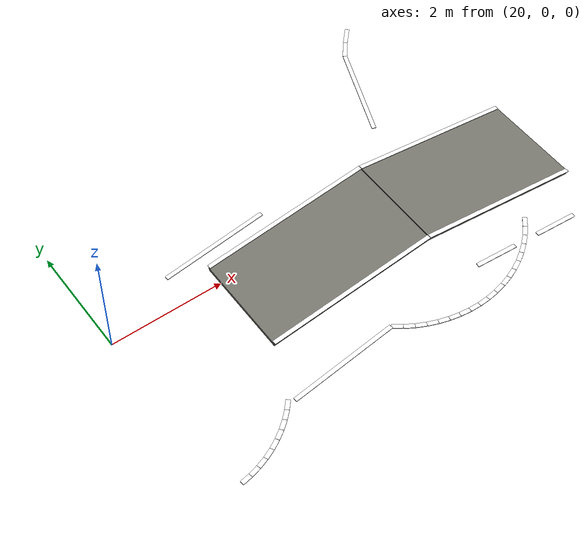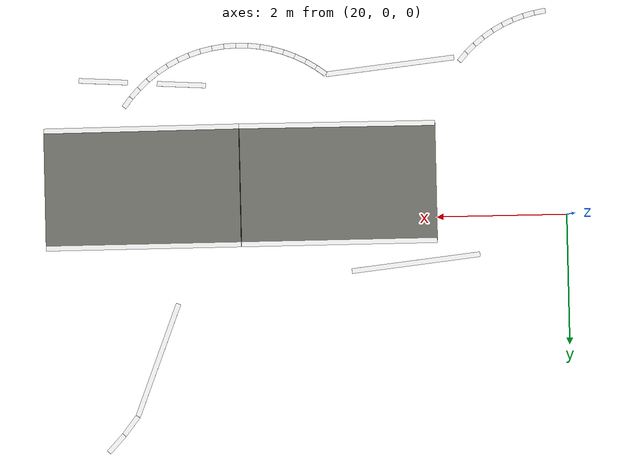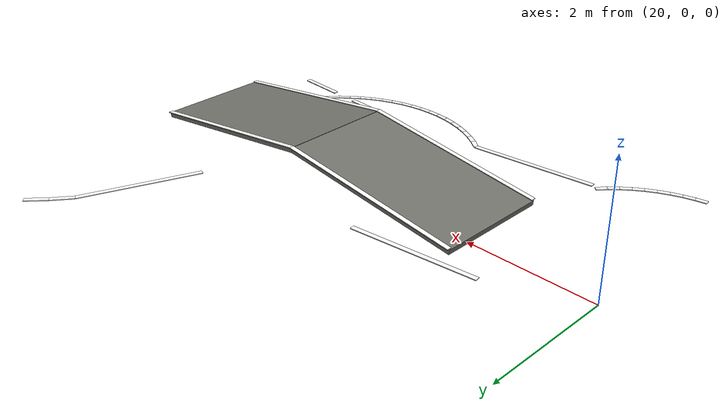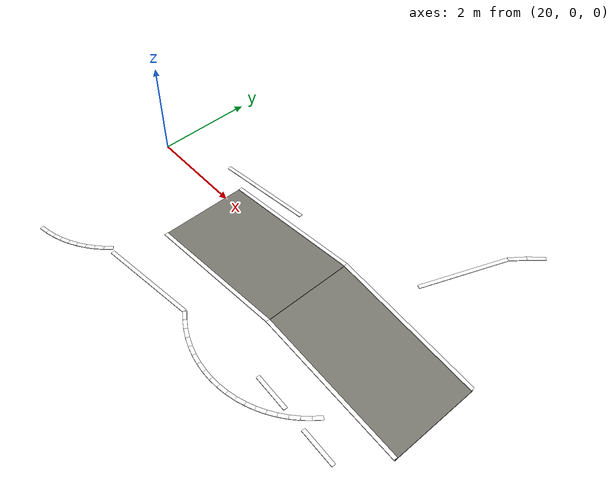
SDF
<sdf version="1.9">
 <world name="igvc_competition">
  <model name="left_boundary_4">
   <static>1</static>
   <pose>22.3334 0.6899 0.011 0 0 0.109560</pose>
   <link name="link">
    <visual name="visual">
     <geometry><box><size>1.9822 0.0762 0.012</size></box></geometry>
     <material>
      <ambient>0.98 0.98 0.98 1</ambient>
      <diffuse>0.98 0.98 0.98 1</diffuse>
      <specular>0.05 0.05 0.05 1</specular>
      <emissive>0.9 0.9 0.9 1</emissive>
     </material>
    </visual>
   </link>
  </model>
  <model name="right_boundary_4">
   <static>1</static>
   <pose>22.6666 -2.3399 0.011 0 0 0.109560</pose>
   <link name="link">
    <visual name="visual">
     <geometry><box><size>1.9822 0.0762 0.012</size></box></geometry>
     <material>
      <ambient>0.98 0.98 0.98 1</ambient>
      <diffuse>0.98 0.98 0.98 1</diffuse>
      <specular>0.05 0.05 0.05 1</specular>
      <emissive>0.9 0.9 0.9 1</emissive>
     </material>
    </visual>
   </link>
  </model>
  <model name="left_boundary_5">
   <static>1</static>
   <pose>26.3209 2.0995 0.011 0 0 1.204284</pose>
   <link name="link">
    <visual name="visual">
     <geometry><box><size>1.8372 0.0762 0.012</size></box></geometry>
     <material>
      <ambient>0.98 0.98 0.98 1</ambient>
      <diffuse>0.98 0.98 0.98 1</diffuse>
      <specular>0.05 0.05 0.05 1</specular>
      <emissive>0.9 0.9 0.9 1</emissive>
     </material>
    </visual>
   </link>
  </model>
  <model name="right_boundary_join_4_13">
   <static>1</static>
   <pose>20.3489 -3.1204 0.011 0 0 0.171007</pose>
   <link name="link">
    <visual name="visual">
     <geometry><box><size>0.1747 0.0762 0.012</size></box></geometry>
     <material>
      <ambient>0.98 0.98 0.98 1</ambient>
      <diffuse>0.98 0.98 0.98 1</diffuse>
      <specular>0.05 0.05 0.05 1</specular>
      <emissive>0.9 0.9 0.9 1</emissive>
     </material>
    </visual>
   </link>
  </model>
  <model name="right_boundary_join_4_14">
   <static>1</static>
   <pose>20.5195 -3.0834 0.011 0 0 0.256178</pose>
   <link name="link">
    <visual name="visual">
     <geometry><box><size>0.1747 0.0762 0.012</size></box></geometry>
     <material>
      <ambient>0.98 0.98 0.98 1</ambient>
      <diffuse>0.98 0.98 0.98 1</diffuse>
      <specular>0.05 0.05 0.05 1</specular>
      <emissive>0.9 0.9 0.9 1</emissive>
     </material>
    </visual>
   </link>
  </model>
  <model name="right_boundary_join_4_15">
   <static>1</static>
   <pose>20.6864 -3.0320 0.011 0 0 0.341348</pose>
   <link name="link">
    <visual name="visual">
     <geometry><box><size>0.1747 0.0762 0.012</size></box></geometry>
     <material>
      <ambient>0.98 0.98 0.98 1</ambient>
      <diffuse>0.98 0.98 0.98 1</diffuse>
      <specular>0.05 0.05 0.05 1</specular>
      <emissive>0.9 0.9 0.9 1</emissive>
     </material>
    </visual>
   </link>
  </model>
  <model name="right_boundary_join_4_16">
   <static>1</static>
   <pose>20.8482 -2.9666 0.011 0 0 0.426519</pose>
   <link name="link">
    <visual name="visual">
     <geometry><box><size>0.1747 0.0762 0.012</size></box></geometry>
     <material>
      <ambient>0.98 0.98 0.98 1</ambient>
      <diffuse>0.98 0.98 0.98 1</diffuse>
      <specular>0.05 0.05 0.05 1</specular>
      <emissive>0.9 0.9 0.9 1</emissive>
     </material>
    </visual>
   </link>
  </model>
  <model name="right_boundary_join_4_17">
   <static>1</static>
   <pose>21.0039 -2.8877 0.011 0 0 0.511690</pose>
   <link name="link">
    <visual name="visual">
     <geometry><box><size>0.1747 0.0762 0.012</size></box></geometry>
     <material>
      <ambient>0.98 0.98 0.98 1</ambient>
      <diffuse>0.98 0.98 0.98 1</diffuse>
      <specular>0.05 0.05 0.05 1</specular>
      <emissive>0.9 0.9 0.9 1</emissive>
     </material>
    </visual>
   </link>
  </model>
  <model name="right_boundary_join_4_18">
   <static>1</static>
   <pose>21.1524 -2.7958 0.011 0 0 0.596860</pose>
   <link name="link">
    <visual name="visual">
     <geometry><box><size>0.1747 0.0762 0.012</size></box></geometry>
     <material>
      <ambient>0.98 0.98 0.98 1</ambient>
      <diffuse>0.98 0.98 0.98 1</diffuse>
      <specular>0.05 0.05 0.05 1</specular>
      <emissive>0.9 0.9 0.9 1</emissive>
     </material>
    </visual>
   </link>
  </model>
  <model name="right_boundary_join_4_19">
   <static>1</static>
   <pose>21.2925 -2.6917 0.011 0 0 0.682031</pose>
   <link name="link">
    <visual name="visual">
     <geometry><box><size>0.1747 0.0762 0.012</size></box></geometry>
     <material>
      <ambient>0.98 0.98 0.98 1</ambient>
      <diffuse>0.98 0.98 0.98 1</diffuse>
      <specular>0.05 0.05 0.05 1</specular>
      <emissive>0.9 0.9 0.9 1</emissive>
     </material>
    </visual>
   </link>
  </model>
  <model name="right_boundary_join_4_20">
   <static>1</static>
   <pose>21.4232 -2.5759 0.011 0 0 0.767202</pose>
   <link name="link">
    <visual name="visual">
     <geometry><box><size>0.1747 0.0762 0.012</size></box></geometry>
     <material>
      <ambient>0.98 0.98 0.98 1</ambient>
      <diffuse>0.98 0.98 0.98 1</diffuse>
      <specular>0.05 0.05 0.05 1</specular>
      <emissive>0.9 0.9 0.9 1</emissive>
     </material>
    </visual>
   </link>
  </model>
  <model name="right_boundary_join_4_21">
   <static>1</static>
   <pose>21.5436 -2.4495 0.011 0 0 0.852372</pose>
   <link name="link">
    <visual name="visual">
     <geometry><box><size>0.1747 0.0762 0.012</size></box></geometry>
     <material>
      <ambient>0.98 0.98 0.98 1</ambient>
      <diffuse>0.98 0.98 0.98 1</diffuse>
      <specular>0.05 0.05 0.05 1</specular>
      <emissive>0.9 0.9 0.9 1</emissive>
     </material>
    </visual>
   </link>
  </model>
  <model name="right_boundary_join_5_0">
   <static>1</static>
   <pose>23.7265 -2.2863 0.011 0 0 -0.632853</pose>
   <link name="link">
    <visual name="visual">
     <geometry><box><size>0.1852 0.0762 0.012</size></box></geometry>
     <material>
      <ambient>0.98 0.98 0.98 1</ambient>
      <diffuse>0.98 0.98 0.98 1</diffuse>
      <specular>0.05 0.05 0.05 1</specular>
      <emissive>0.9 0.9 0.9 1</emissive>
     </material>
    </visual>
   </link>
  </model>
  <model name="right_boundary_join_5_1">
   <static>1</static>
   <pose>23.8802 -2.3892 0.011 0 0 -0.546881</pose>
   <link name="link">
    <visual name="visual">
     <geometry><box><size>0.1852 0.0762 0.012</size></box></geometry>
     <material>
      <ambient>0.98 0.98 0.98 1</ambient>
      <diffuse>0.98 0.98 0.98 1</diffuse>
      <specular>0.05 0.05 0.05 1</specular>
      <emissive>0.9 0.9 0.9 1</emissive>
     </material>
    </visual>
   </link>
  </model>
  <model name="right_boundary_join_5_2">
   <static>1</static>
   <pose>24.0423 -2.4786 0.011 0 0 -0.460909</pose>
   <link name="link">
    <visual name="visual">
     <geometry><box><size>0.1852 0.0762 0.012</size></box></geometry>
     <material>
      <ambient>0.98 0.98 0.98 1</ambient>
      <diffuse>0.98 0.98 0.98 1</diffuse>
      <specular>0.05 0.05 0.05 1</specular>
      <emissive>0.9 0.9 0.9 1</emissive>
     </material>
    </visual>
   </link>
  </model>
  <model name="right_boundary_join_5_3">
   <static>1</static>
   <pose>24.2114 -2.5537 0.011 0 0 -0.374937</pose>
   <link name="link">
    <visual name="visual">
     <geometry><box><size>0.1852 0.0762 0.012</size></box></geometry>
     <material>
      <ambient>0.98 0.98 0.98 1</ambient>
      <diffuse>0.98 0.98 0.98 1</diffuse>
      <specular>0.05 0.05 0.05 1</specular>
      <emissive>0.9 0.9 0.9 1</emissive>
     </material>
    </visual>
   </link>
  </model>
  <model name="right_boundary_join_5_4">
   <static>1</static>
   <pose>24.3864 -2.6140 0.011 0 0 -0.288965</pose>
   <link name="link">
    <visual name="visual">
     <geometry><box><size>0.1852 0.0762 0.012</size></box></geometry>
     <material>
      <ambient>0.98 0.98 0.98 1</ambient>
      <diffuse>0.98 0.98 0.98 1</diffuse>
      <specular>0.05 0.05 0.05 1</specular>
      <emissive>0.9 0.9 0.9 1</emissive>
     </material>
    </visual>
   </link>
  </model>
  <model name="right_boundary_join_5_5">
   <static>1</static>
   <pose>24.5659 -2.6591 0.011 0 0 -0.202993</pose>
   <link name="link">
    <visual name="visual">
     <geometry><box><size>0.1852 0.0762 0.012</size></box></geometry>
     <material>
      <ambient>0.98 0.98 0.98 1</ambient>
      <diffuse>0.98 0.98 0.98 1</diffuse>
      <specular>0.05 0.05 0.05 1</specular>
      <emissive>0.9 0.9 0.9 1</emissive>
     </material>
    </visual>
   </link>
  </model>
  <model name="right_boundary_join_5_6">
   <static>1</static>
   <pose>24.7486 -2.6885 0.011 0 0 -0.117021</pose>
   <link name="link">
    <visual name="visual">
     <geometry><box><size>0.1852 0.0762 0.012</size></box></geometry>
     <material>
      <ambient>0.98 0.98 0.98 1</ambient>
      <diffuse>0.98 0.98 0.98 1</diffuse>
      <specular>0.05 0.05 0.05 1</specular>
      <emissive>0.9 0.9 0.9 1</emissive>
     </material>
    </visual>
   </link>
  </model>
  <model name="right_boundary_join_5_7">
   <static>1</static>
   <pose>24.9332 -2.7022 0.011 0 0 -0.031048</pose>
   <link name="link">
    <visual name="visual">
     <geometry><box><size>0.1852 0.0762 0.012</size></box></geometry>
     <material>
      <ambient>0.98 0.98 0.98 1</ambient>
      <diffuse>0.98 0.98 0.98 1</diffuse>
      <specular>0.05 0.05 0.05 1</specular>
      <emissive>0.9 0.9 0.9 1</emissive>
     </material>
    </visual>
   </link>
  </model>
  <model name="right_boundary_join_5_8">
   <static>1</static>
   <pose>25.1182 -2.7000 0.011 0 0 0.054924</pose>
   <link name="link">
    <visual name="visual">
     <geometry><box><size>0.1852 0.0762 0.012</size></box></geometry>
     <material>
      <ambient>0.98 0.98 0.98 1</ambient>
      <diffuse>0.98 0.98 0.98 1</diffuse>
      <specular>0.05 0.05 0.05 1</specular>
      <emissive>0.9 0.9 0.9 1</emissive>
     </material>
    </visual>
   </link>
  </model>
  <model name="right_boundary_join_5_9">
   <static>1</static>
   <pose>25.3024 -2.6819 0.011 0 0 0.140896</pose>
   <link name="link">
    <visual name="visual">
     <geometry><box><size>0.1852 0.0762 0.012</size></box></geometry>
     <material>
      <ambient>0.98 0.98 0.98 1</ambient>
      <diffuse>0.98 0.98 0.98 1</diffuse>
      <specular>0.05 0.05 0.05 1</specular>
      <emissive>0.9 0.9 0.9 1</emissive>
     </material>
    </visual>
   </link>
  </model>
  <model name="right_boundary_join_5_10">
   <static>1</static>
   <pose>25.4843 -2.6481 0.011 0 0 0.226868</pose>
   <link name="link">
    <visual name="visual">
     <geometry><box><size>0.1852 0.0762 0.012</size></box></geometry>
     <material>
      <ambient>0.98 0.98 0.98 1</ambient>
      <diffuse>0.98 0.98 0.98 1</diffuse>
      <specular>0.05 0.05 0.05 1</specular>
      <emissive>0.9 0.9 0.9 1</emissive>
     </material>
    </visual>
   </link>
  </model>
  <model name="right_boundary_join_5_11">
   <static>1</static>
   <pose>25.6627 -2.5988 0.011 0 0 0.312840</pose>
   <link name="link">
    <visual name="visual">
     <geometry><box><size>0.1852 0.0762 0.012</size></box></geometry>
     <material>
      <ambient>0.98 0.98 0.98 1</ambient>
      <diffuse>0.98 0.98 0.98 1</diffuse>
      <specular>0.05 0.05 0.05 1</specular>
      <emissive>0.9 0.9 0.9 1</emissive>
     </material>
    </visual>
   </link>
  </model>
  <model name="right_boundary_join_5_12">
   <static>1</static>
   <pose>25.8362 -2.5343 0.011 0 0 0.398812</pose>
   <link name="link">
    <visual name="visual">
     <geometry><box><size>0.1852 0.0762 0.012</size></box></geometry>
     <material>
      <ambient>0.98 0.98 0.98 1</ambient>
      <diffuse>0.98 0.98 0.98 1</diffuse>
      <specular>0.05 0.05 0.05 1</specular>
      <emissive>0.9 0.9 0.9 1</emissive>
     </material>
    </visual>
   </link>
  </model>
  <model name="right_boundary_join_5_13">
   <static>1</static>
   <pose>26.0035 -2.4552 0.011 0 0 0.484784</pose>
   <link name="link">
    <visual name="visual">
     <geometry><box><size>0.1852 0.0762 0.012</size></box></geometry>
     <material>
      <ambient>0.98 0.98 0.98 1</ambient>
      <diffuse>0.98 0.98 0.98 1</diffuse>
      <specular>0.05 0.05 0.05 1</specular>
      <emissive>0.9 0.9 0.9 1</emissive>
     </material>
    </visual>
   </link>
  </model>
  <model name="right_boundary_join_5_14">
   <static>1</static>
   <pose>26.1633 -2.3620 0.011 0 0 0.570756</pose>
   <link name="link">
    <visual name="visual">
     <geometry><box><size>0.1852 0.0762 0.012</size></box></geometry>
     <material>
      <ambient>0.98 0.98 0.98 1</ambient>
      <diffuse>0.98 0.98 0.98 1</diffuse>
      <specular>0.05 0.05 0.05 1</specular>
      <emissive>0.9 0.9 0.9 1</emissive>
     </material>
    </visual>
   </link>
  </model>
  <model name="right_boundary_join_5_15">
   <static>1</static>
   <pose>26.3146 -2.2554 0.011 0 0 0.656728</pose>
   <link name="link">
    <visual name="visual">
     <geometry><box><size>0.1852 0.0762 0.012</size></box></geometry>
     <material>
      <ambient>0.98 0.98 0.98 1</ambient>
      <diffuse>0.98 0.98 0.98 1</diffuse>
      <specular>0.05 0.05 0.05 1</specular>
      <emissive>0.9 0.9 0.9 1</emissive>
     </material>
    </visual>
   </link>
  </model>
  <model name="right_boundary_join_5_16">
   <static>1</static>
   <pose>26.4562 -2.1362 0.011 0 0 0.742700</pose>
   <link name="link">
    <visual name="visual">
     <geometry><box><size>0.1852 0.0762 0.012</size></box></geometry>
     <material>
      <ambient>0.98 0.98 0.98 1</ambient>
      <diffuse>0.98 0.98 0.98 1</diffuse>
      <specular>0.05 0.05 0.05 1</specular>
      <emissive>0.9 0.9 0.9 1</emissive>
     </material>
    </visual>
   </link>
  </model>
  <model name="right_boundary_join_5_17">
   <static>1</static>
   <pose>26.5870 -2.0053 0.011 0 0 0.828672</pose>
   <link name="link">
    <visual name="visual">
     <geometry><box><size>0.1852 0.0762 0.012</size></box></geometry>
     <material>
      <ambient>0.98 0.98 0.98 1</ambient>
      <diffuse>0.98 0.98 0.98 1</diffuse>
      <specular>0.05 0.05 0.05 1</specular>
      <emissive>0.9 0.9 0.9 1</emissive>
     </material>
    </visual>
   </link>
  </model>
  <model name="right_boundary_join_5_18">
   <static>1</static>
   <pose>26.7061 -1.8637 0.011 0 0 0.914644</pose>
   <link name="link">
    <visual name="visual">
     <geometry><box><size>0.1852 0.0762 0.012</size></box></geometry>
     <material>
      <ambient>0.98 0.98 0.98 1</ambient>
      <diffuse>0.98 0.98 0.98 1</diffuse>
      <specular>0.05 0.05 0.05 1</specular>
      <emissive>0.9 0.9 0.9 1</emissive>
     </material>
    </visual>
   </link>
  </model>
  <model name="left_boundary_join_6_0">
   <static>1</static>
   <pose>26.7585 3.0978 0.011 0 0 0.914261</pose>
   <link name="link">
    <visual name="visual">
     <geometry><box><size>0.3552 0.0762 0.012</size></box></geometry>
     <material>
      <ambient>0.98 0.98 0.98 1</ambient>
      <diffuse>0.98 0.98 0.98 1</diffuse>
      <specular>0.05 0.05 0.05 1</specular>
      <emissive>0.9 0.9 0.9 1</emissive>
     </material>
    </visual>
   </link>
  </model>
  <model name="left_boundary_join_6_1">
   <static>1</static>
   <pose>26.9871 3.3692 0.011 0 0 0.827524</pose>
   <link name="link">
    <visual name="visual">
     <geometry><box><size>0.3552 0.0762 0.012</size></box></geometry>
     <material>
      <ambient>0.98 0.98 0.98 1</ambient>
      <diffuse>0.98 0.98 0.98 1</diffuse>
      <specular>0.05 0.05 0.05 1</specular>
      <emissive>0.9 0.9 0.9 1</emissive>
     </material>
    </visual>
   </link>
  </model>
  <model name="dashed_right_boundary_stress_0">
   <static>1</static>
   <pose>25.8743 -2.1225 0.011 0 0 -0.059928</pose>
   <link name="link">
    <visual name="visual">
     <geometry><box><size>0.7500 0.0762 0.012</size></box></geometry>
     <material>
      <ambient>0.98 0.98 0.98 1</ambient>
      <diffuse>0.98 0.98 0.98 1</diffuse>
      <specular>0.05 0.05 0.05 1</specular>
      <emissive>0.9 0.9 0.9 1</emissive>
     </material>
    </visual>
   </link>
  </model>
  <model name="dashed_right_boundary_stress_1">
   <static>1</static>
   <pose>27.0722 -2.1943 0.011 0 0 -0.059928</pose>
   <link name="link">
    <visual name="visual">
     <geometry><box><size>0.7500 0.0762 0.012</size></box></geometry>
     <material>
      <ambient>0.98 0.98 0.98 1</ambient>
      <diffuse>0.98 0.98 0.98 1</diffuse>
      <specular>0.05 0.05 0.05 1</specular>
      <emissive>0.9 0.9 0.9 1</emissive>
     </material>
    </visual>
   </link>
  </model>
  <model name="legal_approach_ramp_up">
   <static>1</static>
   <pose>23.5000 -0.5500 0.2000 0.000000 -0.132552 0.000000</pose>
   <link name="link">
    <collision name="collision"><geometry><box><size>3.0265 1.8000 0.0800</size></box></geometry></collision>
    <visual name="visual">
     <geometry><box><size>3.0265 1.8000 0.0800</size></box></geometry>
     <material>
      <ambient>0.45 0.45 0.42 1.0</ambient>
      <diffuse>0.45 0.45 0.42 1.0</diffuse>
      <specular>0.05 0.05 0.05 1</specular>
     </material>
    </visual>
   </link>
  </model>
  <model name="legal_approach_ramp_down">
   <static>1</static>
   <pose>26.5000 -0.5500 0.2000 0.000000 0.132552 0.000000</pose>
   <link name="link">
    <collision name="collision"><geometry><box><size>3.0265 1.8000 0.0800</size></box></geometry></collision>
    <visual name="visual">
     <geometry><box><size>3.0265 1.8000 0.0800</size></box></geometry>
     <material>
      <ambient>0.45 0.45 0.42 1.0</ambient>
      <diffuse>0.45 0.45 0.42 1.0</diffuse>
      <specular>0.05 0.05 0.05 1</specular>
     </material>
    </visual>
   </link>
  </model>
  <model name="legal_approach_ramp_up_left_white_line">
   <static>1</static>
   <pose>23.5000 0.3500 0.2520 0.000000 -0.132552 0.000000</pose>
   <link name="link">
    <visual name="visual">
     <geometry><box><size>3.0265 0.0762 0.012</size></box></geometry>
     <material>
      <ambient>0.98 0.98 0.98 1</ambient>
      <diffuse>0.98 0.98 0.98 1</diffuse>
      <specular>0.05 0.05 0.05 1</specular>
      <emissive>0.9 0.9 0.9 1</emissive>
     </material>
    </visual>
   </link>
  </model>
  <model name="legal_approach_ramp_up_right_white_line">
   <static>1</static>
   <pose>23.5000 -1.4500 0.2520 0.000000 -0.132552 0.000000</pose>
   <link name="link">
    <visual name="visual">
     <geometry><box><size>3.0265 0.0762 0.012</size></box></geometry>
     <material>
      <ambient>0.98 0.98 0.98 1</ambient>
      <diffuse>0.98 0.98 0.98 1</diffuse>
      <specular>0.05 0.05 0.05 1</specular>
      <emissive>0.9 0.9 0.9 1</emissive>
     </material>
    </visual>
   </link>
  </model>
  <model name="legal_approach_ramp_down_left_white_line">
   <static>1</static>
   <pose>26.5000 0.3500 0.2520 0.000000 0.132552 0.000000</pose>
   <link name="link">
    <visual name="visual">
     <geometry><box><size>3.0265 0.0762 0.012</size></box></geometry>
     <material>
      <ambient>0.98 0.98 0.98 1</ambient>
      <diffuse>0.98 0.98 0.98 1</diffuse>
      <specular>0.05 0.05 0.05 1</specular>
      <emissive>0.9 0.9 0.9 1</emissive>
     </material>
    </visual>
   </link>
  </model>
  <model name="legal_approach_ramp_down_right_white_line">
   <static>1</static>
   <pose>26.5000 -1.4500 0.2520 0.000000 0.132552 0.000000</pose>
   <link name="link">
    <visual name="visual">
     <geometry><box><size>3.0265 0.0762 0.012</size></box></geometry>
     <material>
      <ambient>0.98 0.98 0.98 1</ambient>
      <diffuse>0.98 0.98 0.98 1</diffuse>
      <specular>0.05 0.05 0.05 1</specular>
      <emissive>0.9 0.9 0.9 1</emissive>
     </material>
    </visual>
   </link>
  </model>
 </world>
</sdf>
